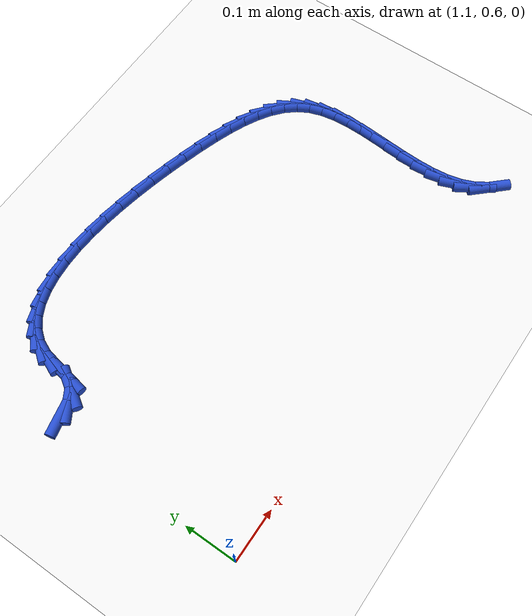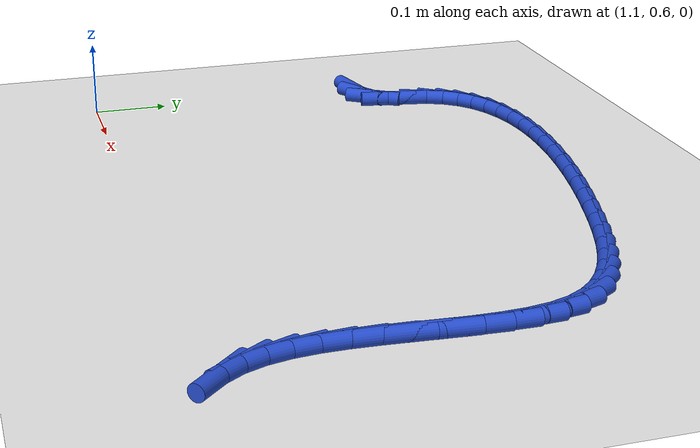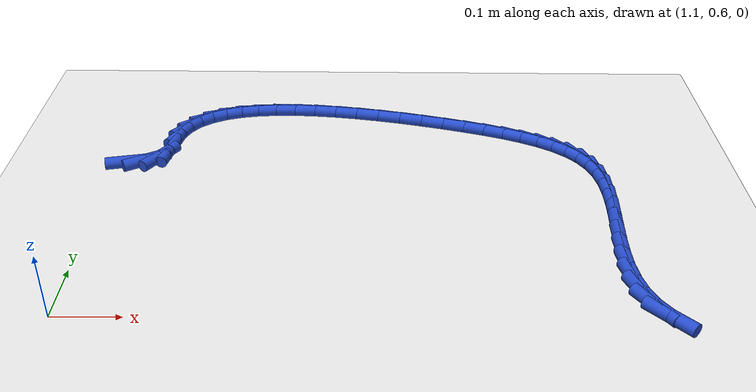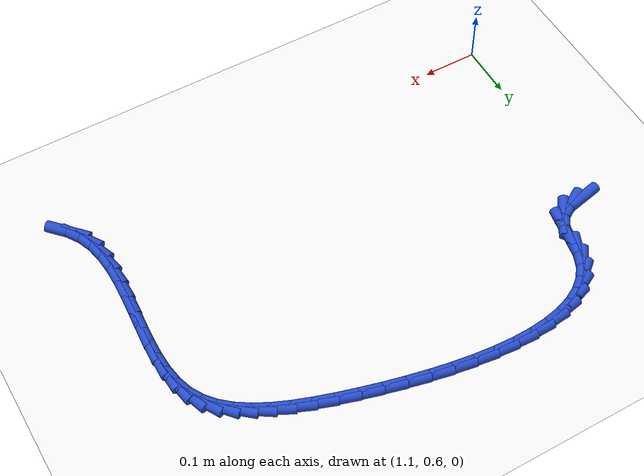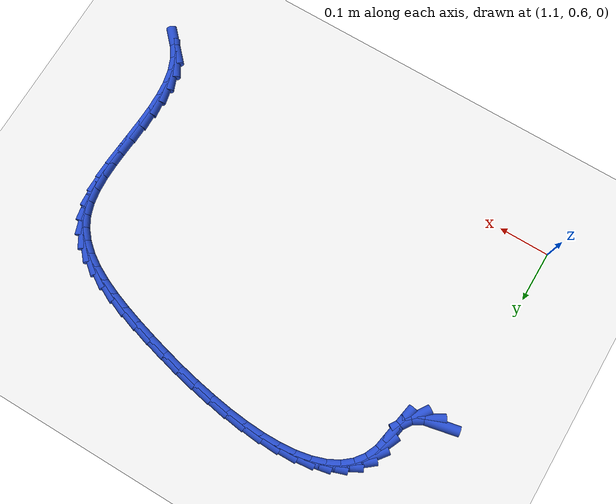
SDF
<sdf version="1.6">
 <world name="default">
  <model name="ground_plane">
   <static>1</static>
   <link name="link">
    <collision name="collision">
     <geometry><plane><normal>0 0 1</normal><size>100 100</size></plane></geometry>
     <surface><friction><ode><mu>100</mu><mu2>50</mu2></ode></friction></surface>
    </collision>
    <visual name="visual">
     <cast_shadows>0</cast_shadows>
     <geometry><plane><normal>0 0 1</normal><size>100 100</size></plane></geometry>
     <material>
      <script><uri>file://media/materials/scripts/gazebo.material</uri><name>Gazebo/WhiteGlow</name></script>
     </material>
    </visual>
   </link>
  </model>
  <model name="line">
   <link name="link_63">
    <pose>1.1268699423860835 0.9799635159456372 0.01 0 1.57 0.20728556282290742</pose>
    <collision name="collision">
     <geometry><cylinder><radius>0.01</radius><length>0.08</length></cylinder></geometry>
    </collision>
    <visual name="visual">
     <material>
      <script><name>Gazebo/Blue</name><uri>file://media/materials/scripts/gazebo.material</uri></script>
     </material>
     <geometry><cylinder><radius>0.01</radius><length>0.08</length></cylinder></geometry>
    </visual>
   </link>
   <link name="link_64">
    <pose>1.152780318002614 0.9854126318219341 0.01 0 1.57 0.5392005330362443</pose>
    <collision name="collision">
     <geometry><cylinder><radius>0.01</radius><length>0.08</length></cylinder></geometry>
    </collision>
    <visual name="visual">
     <material>
      <script><name>Gazebo/Blue</name><uri>file://media/materials/scripts/gazebo.material</uri></script>
     </material>
     <geometry><cylinder><radius>0.01</radius><length>0.08</length></cylinder></geometry>
    </visual>
   </link>
   <link name="link_65">
    <pose>1.1727209209574654 0.9973439602977643 0.01 0 1.57 0.9852187091382848</pose>
    <collision name="collision">
     <geometry><cylinder><radius>0.01</radius><length>0.08</length></cylinder></geometry>
    </collision>
    <visual name="visual">
     <material>
      <script><name>Gazebo/Blue</name><uri>file://media/materials/scripts/gazebo.material</uri></script>
     </material>
     <geometry><cylinder><radius>0.01</radius><length>0.08</length></cylinder></geometry>
    </visual>
   </link>
   <link name="link_66">
    <pose>1.1855523704697242 1.0166926312301623 0.01 0 1.57 1.3903425761029966</pose>
    <collision name="collision">
     <geometry><cylinder><radius>0.01</radius><length>0.08</length></cylinder></geometry>
    </collision>
    <visual name="visual">
     <material>
      <script><name>Gazebo/Blue</name><uri>file://media/materials/scripts/gazebo.material</uri></script>
     </material>
     <geometry><cylinder><radius>0.01</radius><length>0.08</length></cylinder></geometry>
    </visual>
   </link>
   <link name="link_67">
    <pose>1.190538173636602 1.0440213334743986 0.01 0 1.57 1.3879528130879892</pose>
    <collision name="collision">
     <geometry><cylinder><radius>0.01</radius><length>0.08</length></cylinder></geometry>
    </collision>
    <visual name="visual">
     <material>
      <script><name>Gazebo/Blue</name><uri>file://media/materials/scripts/gazebo.material</uri></script>
     </material>
     <geometry><cylinder><radius>0.01</radius><length>0.08</length></cylinder></geometry>
    </visual>
   </link>
   <link name="link_68">
    <pose>1.1956774240417025 1.0718147775495197 0.01 0 1.57 1.1581533292646935</pose>
    <collision name="collision">
     <geometry><cylinder><radius>0.01</radius><length>0.08</length></cylinder></geometry>
    </collision>
    <visual name="visual">
     <material>
      <script><name>Gazebo/Blue</name><uri>file://media/materials/scripts/gazebo.material</uri></script>
     </material>
     <geometry><cylinder><radius>0.01</radius><length>0.08</length></cylinder></geometry>
    </visual>
   </link>
   <link name="link_69">
    <pose>1.2059662566015787 1.0953172235096436 0.01 0 1.57 0.9132085582925707</pose>
    <collision name="collision">
     <geometry><cylinder><radius>0.01</radius><length>0.08</length></cylinder></geometry>
    </collision>
    <visual name="visual">
     <material>
      <script><name>Gazebo/Blue</name><uri>file://media/materials/scripts/gazebo.material</uri></script>
     </material>
     <geometry><cylinder><radius>0.01</radius><length>0.08</length></cylinder></geometry>
    </visual>
   </link>
   <link name="link_70">
    <pose>1.2209884182716702 1.114769760465364 0.01 0 1.57 0.6809760191276878</pose>
    <collision name="collision">
     <geometry><cylinder><radius>0.01</radius><length>0.08</length></cylinder></geometry>
    </collision>
    <visual name="visual">
     <material>
      <script><name>Gazebo/Blue</name><uri>file://media/materials/scripts/gazebo.material</uri></script>
     </material>
     <geometry><cylinder><radius>0.01</radius><length>0.08</length></cylinder></geometry>
    </visual>
   </link>
   <link name="link_71">
    <pose>1.240312415701449 1.130427549608317 0.01 0 1.57 0.4814567110181494</pose>
    <collision name="collision">
     <geometry><cylinder><radius>0.01</radius><length>0.08</length></cylinder></geometry>
    </collision>
    <visual name="visual">
     <material>
      <script><name>Gazebo/Blue</name><uri>file://media/materials/scripts/gazebo.material</uri></script>
     </material>
     <geometry><cylinder><radius>0.01</radius><length>0.08</length></cylinder></geometry>
    </visual>
   </link>
   <link name="link_72">
    <pose>1.2635067555403896 1.142545752130139 0.01 0 1.57 0.32026455693604966</pose>
    <collision name="collision">
     <geometry><cylinder><radius>0.01</radius><length>0.08</length></cylinder></geometry>
    </collision>
    <visual name="visual">
     <material>
      <script><name>Gazebo/Blue</name><uri>file://media/materials/scripts/gazebo.material</uri></script>
     </material>
     <geometry><cylinder><radius>0.01</radius><length>0.08</length></cylinder></geometry>
    </visual>
   </link>
   <link name="link_73">
    <pose>1.2901399444379646 1.1513795292224673 0.01 0 1.57 0.1933829106194188</pose>
    <collision name="collision">
     <geometry><cylinder><radius>0.01</radius><length>0.08</length></cylinder></geometry>
    </collision>
    <visual name="visual">
     <material>
      <script><name>Gazebo/Blue</name><uri>file://media/materials/scripts/gazebo.material</uri></script>
     </material>
     <geometry><cylinder><radius>0.01</radius><length>0.08</length></cylinder></geometry>
    </visual>
   </link>
   <link name="link_74">
    <pose>1.3197804890436478 1.1571840420769384 0.01 0 1.57 0.0937882118338855</pose>
    <collision name="collision">
     <geometry><cylinder><radius>0.01</radius><length>0.08</length></cylinder></geometry>
    </collision>
    <visual name="visual">
     <material>
      <script><name>Gazebo/Blue</name><uri>file://media/materials/scripts/gazebo.material</uri></script>
     </material>
     <geometry><cylinder><radius>0.01</radius><length>0.08</length></cylinder></geometry>
    </visual>
   </link>
   <link name="link_75">
    <pose>1.351996896006913 1.1602144518851891 0.01 0 1.57 0.014884127873434317</pose>
    <collision name="collision">
     <geometry><cylinder><radius>0.01</radius><length>0.08</length></cylinder></geometry>
    </collision>
    <visual name="visual">
     <material>
      <script><name>Gazebo/Blue</name><uri>file://media/materials/scripts/gazebo.material</uri></script>
     </material>
     <geometry><cylinder><radius>0.01</radius><length>0.08</length></cylinder></geometry>
    </visual>
   </link>
   <link name="link_76">
    <pose>1.3863576719772337 1.1607259198388564 0.01 0 1.57 -0.04853781947016501</pose>
    <collision name="collision">
     <geometry><cylinder><radius>0.01</radius><length>0.08</length></cylinder></geometry>
    </collision>
    <visual name="visual">
     <material>
      <script><name>Gazebo/Blue</name><uri>file://media/materials/scripts/gazebo.material</uri></script>
     </material>
     <geometry><cylinder><radius>0.01</radius><length>0.08</length></cylinder></geometry>
    </visual>
   </link>
   <link name="link_77">
    <pose>1.422431323604083 1.1589736071295764 0.01 0 1.57 -0.1003425995840545</pose>
    <collision name="collision">
     <geometry><cylinder><radius>0.01</radius><length>0.08</length></cylinder></geometry>
    </collision>
    <visual name="visual">
     <material>
      <script><name>Gazebo/Blue</name><uri>file://media/materials/scripts/gazebo.material</uri></script>
     </material>
     <geometry><cylinder><radius>0.01</radius><length>0.08</length></cylinder></geometry>
    </visual>
   </link>
   <link name="link_78">
    <pose>1.4597863575369348 1.1552126749489864 0.01 0 1.57 -0.14334717998512578</pose>
    <collision name="collision">
     <geometry><cylinder><radius>0.01</radius><length>0.08</length></cylinder></geometry>
    </collision>
    <visual name="visual">
     <material>
      <script><name>Gazebo/Blue</name><uri>file://media/materials/scripts/gazebo.material</uri></script>
     </material>
     <geometry><cylinder><radius>0.01</radius><length>0.08</length></cylinder></geometry>
    </visual>
   </link>
   <link name="link_79">
    <pose>1.4979912804252622 1.1496982844887227 0.01 0 1.57 -0.17960952992641357</pose>
    <collision name="collision">
     <geometry><cylinder><radius>0.01</radius><length>0.08</length></cylinder></geometry>
    </collision>
    <visual name="visual">
     <material>
      <script><name>Gazebo/Blue</name><uri>file://media/materials/scripts/gazebo.material</uri></script>
     </material>
     <geometry><cylinder><radius>0.01</radius><length>0.08</length></cylinder></geometry>
    </visual>
   </link>
   <link name="link_80">
    <pose>1.536614598918538 1.1426855969404222 0.01 0 1.57 -0.21065263032697176</pose>
    <collision name="collision">
     <geometry><cylinder><radius>0.01</radius><length>0.08</length></cylinder></geometry>
    </collision>
    <visual name="visual">
     <material>
      <script><name>Gazebo/Blue</name><uri>file://media/materials/scripts/gazebo.material</uri></script>
     </material>
     <geometry><cylinder><radius>0.01</radius><length>0.08</length></cylinder></geometry>
    </visual>
   </link>
   <link name="link_81">
    <pose>1.575224819666237 1.1344297734957214 0.01 0 1.57 -0.2376261667811009</pose>
    <collision name="collision">
     <geometry><cylinder><radius>0.01</radius><length>0.08</length></cylinder></geometry>
    </collision>
    <visual name="visual">
     <material>
      <script><name>Gazebo/Blue</name><uri>file://media/materials/scripts/gazebo.material</uri></script>
     </material>
     <geometry><cylinder><radius>0.01</radius><length>0.08</length></cylinder></geometry>
    </visual>
   </link>
   <link name="link_82">
    <pose>1.613390449317832 1.1251859753462576 0.01 0 1.57 -0.2614217397934098</pose>
    <collision name="collision">
     <geometry><cylinder><radius>0.01</radius><length>0.08</length></cylinder></geometry>
    </collision>
    <visual name="visual">
     <material>
      <script><name>Gazebo/Blue</name><uri>file://media/materials/scripts/gazebo.material</uri></script>
     </material>
     <geometry><cylinder><radius>0.01</radius><length>0.08</length></cylinder></geometry>
    </visual>
   </link>
   <link name="link_83">
    <pose>1.6506799945227968 1.115209363683667 0.01 0 1.57 -0.28290166750795204</pose>
    <collision name="collision">
     <geometry><cylinder><radius>0.01</radius><length>0.08</length></cylinder></geometry>
    </collision>
    <visual name="visual">
     <material>
      <script><name>Gazebo/Blue</name><uri>file://media/materials/scripts/gazebo.material</uri></script>
     </material>
     <geometry><cylinder><radius>0.01</radius><length>0.08</length></cylinder></geometry>
    </visual>
   </link>
   <link name="link_84">
    <pose>1.6866628868359097 1.1047491888049321 0.01 0 1.57 -0.30848269052168664</pose>
    <collision name="collision">
     <geometry><cylinder><radius>0.01</radius><length>0.08</length></cylinder></geometry>
    </collision>
    <visual name="visual">
     <material>
      <script><name>Gazebo/Blue</name><uri>file://media/materials/scripts/gazebo.material</uri></script>
     </material>
     <geometry><cylinder><radius>0.01</radius><length>0.08</length></cylinder></geometry>
    </visual>
   </link>
   <link name="link_85">
    <pose>1.720944472130692 1.0938251793970253 0.01 0 1.57 -0.3472713081893274</pose>
    <collision name="collision">
     <geometry><cylinder><radius>0.01</radius><length>0.08</length></cylinder></geometry>
    </collision>
    <visual name="visual">
     <material>
      <script><name>Gazebo/Blue</name><uri>file://media/materials/scripts/gazebo.material</uri></script>
     </material>
     <geometry><cylinder><radius>0.01</radius><length>0.08</length></cylinder></geometry>
    </visual>
   </link>
   <link name="link_86">
    <pose>1.7531767263290226 1.082159060338192 0.01 0 1.57 -0.4025871712532353</pose>
    <collision name="collision">
     <geometry><cylinder><radius>0.01</radius><length>0.08</length></cylinder></geometry>
    </collision>
    <visual name="visual">
     <material>
      <script><name>Gazebo/Blue</name><uri>file://media/materials/scripts/gazebo.material</uri></script>
     </material>
     <geometry><cylinder><radius>0.01</radius><length>0.08</length></cylinder></geometry>
    </visual>
   </link>
   <link name="link_87">
    <pose>1.7830147393122218 1.0694526557815711 0.01 0 1.57 -0.47816640935864385</pose>
    <collision name="collision">
     <geometry><cylinder><radius>0.01</radius><length>0.08</length></cylinder></geometry>
    </collision>
    <visual name="visual">
     <material>
      <script><name>Gazebo/Blue</name><uri>file://media/materials/scripts/gazebo.material</uri></script>
     </material>
     <geometry><cylinder><radius>0.01</radius><length>0.08</length></cylinder></geometry>
    </visual>
   </link>
   <link name="link_88">
    <pose>1.8101136009616088 1.055407789880301 0.01 0 1.57 -0.578476580716304</pose>
    <collision name="collision">
     <geometry><cylinder><radius>0.01</radius><length>0.08</length></cylinder></geometry>
    </collision>
    <visual name="visual">
     <material>
      <script><name>Gazebo/Blue</name><uri>file://media/materials/scripts/gazebo.material</uri></script>
     </material>
     <geometry><cylinder><radius>0.01</radius><length>0.08</length></cylinder></geometry>
    </visual>
   </link>
   <link name="link_89">
    <pose>1.834128401158505 1.0397262867875212 0.01 0 1.57 -0.7078225898212558</pose>
    <collision name="collision">
     <geometry><cylinder><radius>0.01</radius><length>0.08</length></cylinder></geometry>
    </collision>
    <visual name="visual">
     <material>
      <script><name>Gazebo/Blue</name><uri>file://media/materials/scripts/gazebo.material</uri></script>
     </material>
     <geometry><cylinder><radius>0.01</radius><length>0.08</length></cylinder></geometry>
    </visual>
   </link>
   <link name="link_90">
    <pose>1.854714229784231 1.0221099706563708 0.01 0 1.57 -0.8680586543217659</pose>
    <collision name="collision">
     <geometry><cylinder><radius>0.01</radius><length>0.08</length></cylinder></geometry>
    </collision>
    <visual name="visual">
     <material>
      <script><name>Gazebo/Blue</name><uri>file://media/materials/scripts/gazebo.material</uri></script>
     </material>
     <geometry><cylinder><radius>0.01</radius><length>0.08</length></cylinder></geometry>
    </visual>
   </link>
   <link name="link_91">
    <pose>1.8715261767201063 1.0022606656399882 0.01 0 1.57 -1.054879117219736</pose>
    <collision name="collision">
     <geometry><cylinder><radius>0.01</radius><length>0.08</length></cylinder></geometry>
    </collision>
    <visual name="visual">
     <material>
      <script><name>Gazebo/Blue</name><uri>file://media/materials/scripts/gazebo.material</uri></script>
     </material>
     <geometry><cylinder><radius>0.01</radius><length>0.08</length></cylinder></geometry>
    </visual>
   </link>
   <link name="link_92">
    <pose>1.884219331847452 0.9798801958915122 0.01 0 1.57 -1.247487526392664</pose>
    <collision name="collision">
     <geometry><cylinder><radius>0.01</radius><length>0.08</length></cylinder></geometry>
    </collision>
    <visual name="visual">
     <material>
      <script><name>Gazebo/Blue</name><uri>file://media/materials/scripts/gazebo.material</uri></script>
     </material>
     <geometry><cylinder><radius>0.01</radius><length>0.08</length></cylinder></geometry>
    </visual>
   </link>
   <link name="link_93">
    <pose>1.8926255307359916 0.9547919790980776 0.01 0 1.57 -1.4014544644147313</pose>
    <collision name="collision">
     <geometry><cylinder><radius>0.01</radius><length>0.08</length></cylinder></geometry>
    </collision>
    <visual name="visual">
     <material>
      <script><name>Gazebo/Blue</name><uri>file://media/materials/scripts/gazebo.material</uri></script>
     </material>
     <geometry><cylinder><radius>0.01</radius><length>0.08</length></cylinder></geometry>
    </visual>
   </link>
   <link name="link_94">
    <pose>1.8973207305494124 0.9273313570290928 0.01 0 1.57 -1.5110657905065659</pose>
    <collision name="collision">
     <geometry><cylinder><radius>0.01</radius><length>0.08</length></cylinder></geometry>
    </collision>
    <visual name="visual">
     <material>
      <script><name>Gazebo/Blue</name><uri>file://media/materials/scripts/gazebo.material</uri></script>
     </material>
     <geometry><cylinder><radius>0.01</radius><length>0.08</length></cylinder></geometry>
    </visual>
   </link>
   <link name="link_95">
    <pose>1.8990766861537418 0.8979683719651401 0.01 0 1.57 1.5574336301991936</pose>
    <collision name="collision">
     <geometry><cylinder><radius>0.01</radius><length>0.08</length></cylinder></geometry>
    </collision>
    <visual name="visual">
     <material>
      <script><name>Gazebo/Blue</name><uri>file://media/materials/scripts/gazebo.material</uri></script>
     </material>
     <geometry><cylinder><radius>0.01</radius><length>0.08</length></cylinder></geometry>
    </visual>
   </link>
   <link name="link_96">
    <pose>1.8986651533396013 0.8671730668228831 0.01 0 1.57 1.5139494849642718</pose>
    <collision name="collision">
     <geometry><cylinder><radius>0.01</radius><length>0.08</length></cylinder></geometry>
    </collision>
    <visual name="visual">
     <material>
      <script><name>Gazebo/Blue</name><uri>file://media/materials/scripts/gazebo.material</uri></script>
     </material>
     <geometry><cylinder><radius>0.01</radius><length>0.08</length></cylinder></geometry>
    </visual>
   </link>
   <link name="link_97">
    <pose>1.8968578878976121 0.835415484518986 0.01 0 1.57 1.4955508730209082</pose>
    <collision name="collision">
     <geometry><cylinder><radius>0.01</radius><length>0.08</length></cylinder></geometry>
    </collision>
    <visual name="visual">
     <material>
      <script><name>Gazebo/Blue</name><uri>file://media/materials/scripts/gazebo.material</uri></script>
     </material>
     <geometry><cylinder><radius>0.01</radius><length>0.08</length></cylinder></geometry>
    </visual>
   </link>
   <link name="link_98">
    <pose>1.8944266456183954 0.8031656679701116 0.01 0 1.57 1.5001572762417046</pose>
    <collision name="collision">
     <geometry><cylinder><radius>0.01</radius><length>0.08</length></cylinder></geometry>
    </collision>
    <visual name="visual">
     <material>
      <script><name>Gazebo/Blue</name><uri>file://media/materials/scripts/gazebo.material</uri></script>
     </material>
     <geometry><cylinder><radius>0.01</radius><length>0.08</length></cylinder></geometry>
    </visual>
   </link>
   <link name="link_99">
    <pose>1.8921431822925732 0.7708936600929243 0.01 0 1.57 1.5279642596698664</pose>
    <collision name="collision">
     <geometry><cylinder><radius>0.01</radius><length>0.08</length></cylinder></geometry>
    </collision>
    <visual name="visual">
     <material>
      <script><name>Gazebo/Blue</name><uri>file://media/materials/scripts/gazebo.material</uri></script>
     </material>
     <geometry><cylinder><radius>0.01</radius><length>0.08</length></cylinder></geometry>
    </visual>
   </link>
   <link name="link_100">
    <pose>1.8907792537107662 0.7390695038040875 0.01 0 1.57 -1.560204631382632</pose>
    <collision name="collision">
     <geometry><cylinder><radius>0.01</radius><length>0.08</length></cylinder></geometry>
    </collision>
    <visual name="visual">
     <material>
      <script><name>Gazebo/Blue</name><uri>file://media/materials/scripts/gazebo.material</uri></script>
     </material>
     <geometry><cylinder><radius>0.01</radius><length>0.08</length></cylinder></geometry>
    </visual>
   </link>
   <link name="link_101">
    <pose>1.891106615663596 0.708163242020265 0.01 0 1.57 -1.4765450183526427</pose>
    <collision name="collision">
     <geometry><cylinder><radius>0.01</radius><length>0.08</length></cylinder></geometry>
    </collision>
    <visual name="visual">
     <material>
      <script><name>Gazebo/Blue</name><uri>file://media/materials/scripts/gazebo.material</uri></script>
     </material>
     <geometry><cylinder><radius>0.01</radius><length>0.08</length></cylinder></geometry>
    </visual>
   </link>
   <link name="link_102">
    <pose>1.8938970239416844 0.6786449176581208 0.01 0 1.57 -1.356318244015525</pose>
    <collision name="collision">
     <geometry><cylinder><radius>0.01</radius><length>0.08</length></cylinder></geometry>
    </collision>
    <visual name="visual">
     <material>
      <script><name>Gazebo/Blue</name><uri>file://media/materials/scripts/gazebo.material</uri></script>
     </material>
     <geometry><cylinder><radius>0.01</radius><length>0.08</length></cylinder></geometry>
    </visual>
   </link>
   <link name="link_103">
    <pose>1.8999222343356523 0.6509845736343184 0.01 0 1.57 -1.1937371982600462</pose>
    <collision name="collision">
     <geometry><cylinder><radius>0.01</radius><length>0.08</length></cylinder></geometry>
    </collision>
    <visual name="visual">
     <material>
      <script><name>Gazebo/Blue</name><uri>file://media/materials/scripts/gazebo.material</uri></script>
     </material>
     <geometry><cylinder><radius>0.01</radius><length>0.08</length></cylinder></geometry>
    </visual>
   </link>
   <link name="link_104">
    <pose>1.9099540026361215 0.6256522528655215 0.01 0 1.57 -0.9951502743532148</pose>
    <collision name="collision">
     <geometry><cylinder><radius>0.01</radius><length>0.08</length></cylinder></geometry>
    </collision>
    <visual name="visual">
     <material>
      <script><name>Gazebo/Blue</name><uri>file://media/materials/scripts/gazebo.material</uri></script>
     </material>
     <geometry><cylinder><radius>0.01</radius><length>0.08</length></cylinder></geometry>
    </visual>
   </link>
   <link name="link_105">
    <pose>1.9246328909815578 0.6030332704243428 0.01 0 1.57 -0.8191857116899615</pose>
    <collision name="collision">
     <geometry><cylinder><radius>0.01</radius><length>0.08</length></cylinder></geometry>
    </collision>
    <visual name="visual">
     <material>
      <script><name>Gazebo/Blue</name><uri>file://media/materials/scripts/gazebo.material</uri></script>
     </material>
     <geometry><cylinder><radius>0.01</radius><length>0.08</length></cylinder></geometry>
    </visual>
   </link>
  </model>
 </world>
</sdf>
